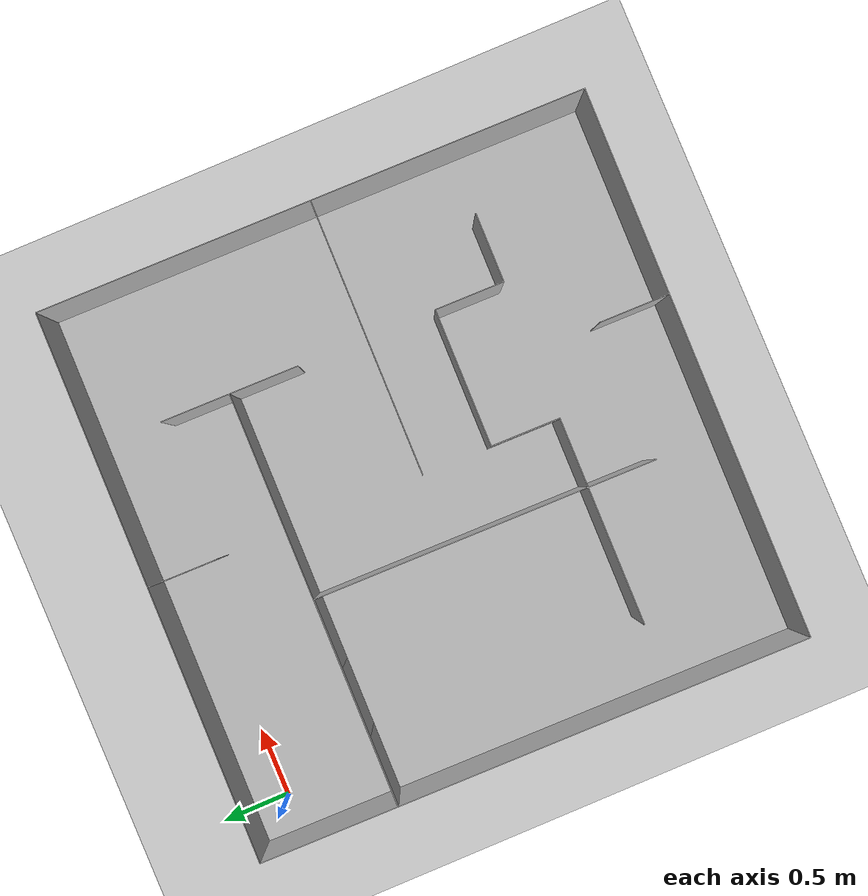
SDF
<sdf version="1.6">
 <world name="default">
  <light name="sun" type="directional">
   <pose>0 0 10 0 -0 0</pose>
   <diffuse>0.8 0.8 0.8 1</diffuse>
   <specular>0.2 0.2 0.2 1</specular>
   <attenuation>
    <range>1000</range>
    <constant>0.9</constant>
    <linear>0.01</linear>
    <quadratic>0.001</quadratic>
   </attenuation>
   <direction>-0.5 0.1 -0.9</direction>
  </light>
  <model name="ground_plane">
   <static>1</static>
   <link name="link">
    <collision name="collision">
     <geometry><plane><normal>0 0 1</normal><size>100 100</size></plane></geometry>
     <surface><friction><ode><mu>100</mu><mu2>50</mu2></ode></friction></surface>
    </collision>
    <visual name="visual">
     <cast_shadows>0</cast_shadows>
     <geometry><plane><normal>0 0 1</normal><size>100 100</size></plane></geometry>
     <material>
      <script><uri>file://media/materials/scripts/gazebo.material</uri><name>Gazebo/Grey</name></script>
     </material>
    </visual>
   </link>
  </model>
  <gravity>0 0 -9.8</gravity>
  <magnetic_field>6e-06 2.3e-05 -4.2e-05</magnetic_field>
  <atmosphere type="adiabatic"/>
  <physics name="default_physics" default="0" type="ode">
   <max_step_size>0.001</max_step_size>
   <real_time_factor>1</real_time_factor>
   <real_time_update_rate>1000</real_time_update_rate>
  </physics>
  <scene><ambient>0.4 0.4 0.4 1</ambient><background>0.7 0.7 0.7 1</background><shadows>1</shadows></scene>
  <audio><device>default</device></audio>
  <spherical_coordinates>
   <surface_model>EARTH_WGS84</surface_model>
   <latitude_deg>0</latitude_deg>
   <longitude_deg>0</longitude_deg>
   <elevation>0</elevation>
   <heading_deg>0</heading_deg>
  </spherical_coordinates>
  <model name="racetrack_v2">
   <link name="base_link">
    <inertial>
     <pose>0.028358 -0.052278 -0.00892 0 -0 0</pose>
     <mass>223.815</mass>
     <inertia>
      <ixx>330.42</ixx>
      <ixy>0.266283</ixy>
      <ixz>5.21139</ixz>
      <iyy>438.745</iyy>
      <iyz>-0.304492</iyz>
      <izz>545.052</izz>
     </inertia>
    </inertial>
    <collision name="base_link_collision">
     <geometry><mesh><scale>1 1 1</scale><uri>model://racetrack_v2/meshes/base_link.dae</uri></mesh></geometry>
    </collision>
    <collision name="base_link_fixed_joint_lump__wall_collision_1">
     <pose>-1.9794 -0.005 2.0076 1.5708 -0 0</pose>
     <geometry><mesh><scale>1 1 1</scale><uri>model://racetrack_v2/meshes/wall.STL</uri></mesh></geometry>
    </collision>
    <collision name="base_link_fixed_joint_lump__b3_collision_2">
     <pose>0.0131 -0.404994 0.510099 3.14159 -1.57079 -3e-06</pose>
     <geometry><mesh><scale>1 1 1</scale><uri>model://racetrack_v2/meshes/b3.dae</uri></mesh></geometry>
    </collision>
    <collision name="base_link_fixed_joint_lump__d1_collision_3">
     <pose>2.0206 -0.404989 -0.989901 0 -7e-06 -3.14159</pose>
     <geometry><mesh><scale>1 1 1</scale><uri>model://racetrack_v2/meshes/d1.dae</uri></mesh></geometry>
    </collision>
    <collision name="base_link_fixed_joint_lump__d2_collision_4">
     <pose>1.0206 -0.404989 -0.984901 -3.14159 -0 0</pose>
     <geometry><mesh><scale>1 1 1</scale><uri>model://racetrack_v2/meshes/d2.dae</uri></mesh></geometry>
    </collision>
    <collision name="base_link_fixed_joint_lump__d3_collision_5">
     <pose>0.5231 -0.404989 -0.984901 -3.14159 -0 0</pose>
     <geometry><mesh><scale>1 1 1</scale><uri>model://racetrack_v2/meshes/d3.dae</uri></mesh></geometry>
    </collision>
    <visual name="base_link_visual">
     <geometry><mesh><scale>1 1 1</scale><uri>model://racetrack_v2/meshes/base_link.dae</uri></mesh></geometry>
    </visual>
    <visual name="base_link_fixed_joint_lump__wall_visual_1">
     <pose>-1.9794 -0.005 2.0076 1.5708 -0 0</pose>
     <geometry><mesh><scale>1 1 1</scale><uri>model://racetrack_v2/meshes/wall.STL</uri></mesh></geometry>
    </visual>
    <visual name="base_link_fixed_joint_lump__b3_visual_2">
     <pose>0.0131 -0.404994 0.510099 3.14159 -1.57079 -3e-06</pose>
     <geometry><mesh><scale>1 1 1</scale><uri>model://racetrack_v2/meshes/b3.dae</uri></mesh></geometry>
    </visual>
    <visual name="base_link_fixed_joint_lump__d1_visual_3">
     <pose>2.0206 -0.404989 -0.989901 0 -7e-06 -3.14159</pose>
     <geometry><mesh><scale>1 1 1</scale><uri>model://racetrack_v2/meshes/d1.dae</uri></mesh></geometry>
    </visual>
    <visual name="base_link_fixed_joint_lump__d2_visual_4">
     <pose>1.0206 -0.404989 -0.984901 -3.14159 -0 0</pose>
     <geometry><mesh><scale>1 1 1</scale><uri>model://racetrack_v2/meshes/d2.dae</uri></mesh></geometry>
    </visual>
    <visual name="base_link_fixed_joint_lump__d3_visual_5">
     <pose>0.5231 -0.404989 -0.984901 -3.14159 -0 0</pose>
     <geometry><mesh><scale>1 1 1</scale><uri>model://racetrack_v2/meshes/d3.dae</uri></mesh></geometry>
    </visual>
   </link>
   <pose>1.7492 -1.75826 0.004989 -1.5708 0 3.13189</pose>
  </model>
 </world>
</sdf>
